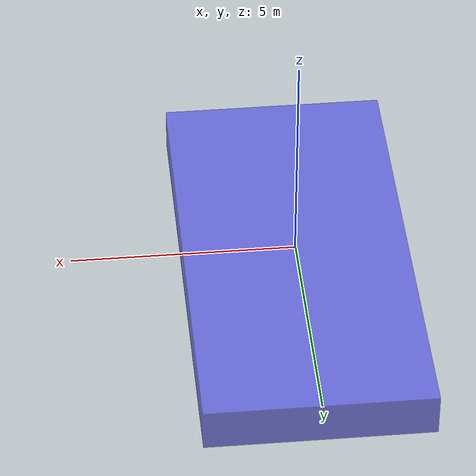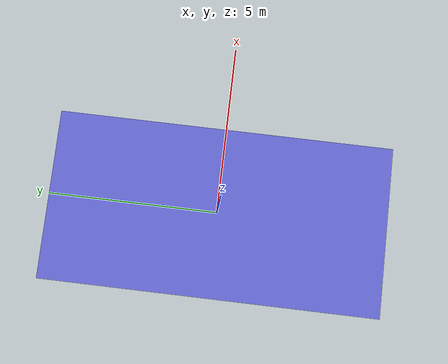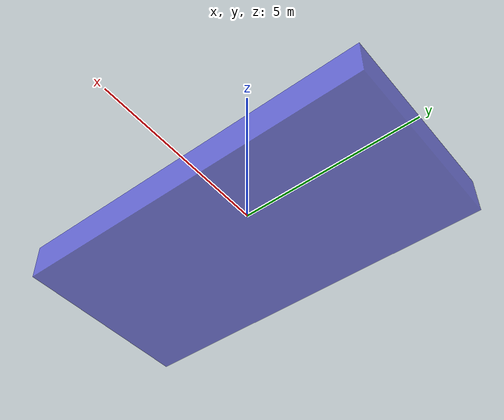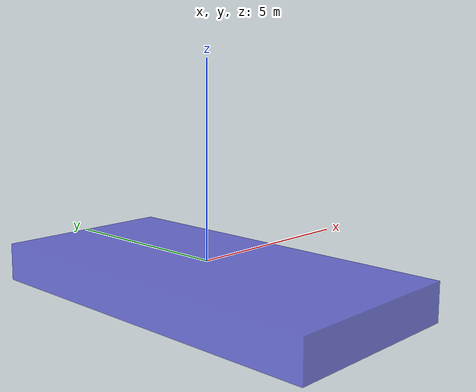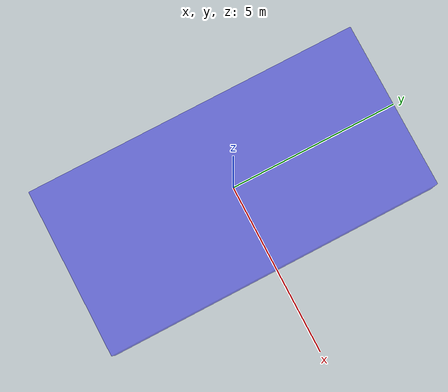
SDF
<?xml version="1.0"?>
<sdf version="1.7">
  <model name="ground">
    <link name="ground_link">
      <visual name="visual">
        <pose>0 0 -0.50 0 0 0</pose>
        <geometry>
          <box>
            <size>5 10 1.0</size>
          </box>
        </geometry>
        <material>
         <diffuse>0.3 0.3 0.9 0.7</diffuse>
        </material>
      </visual>
      <collision name="collision">
        <pose>0 0 -0.50  0 0 0</pose>
        <geometry>
          <box>
            <size>5 10 1.0</size>
          </box>
        </geometry>
        <surface>
          <friction>
          <ode>
            <mu>0.5</mu>
            <mu2>0.5</mu2>
          </ode>
          </friction>
        </surface>
      </collision>
    </link>
    <frame name="ground_center">
      <pose relative_to="ground_link">0 0 0.0 0 0 0</pose>
    </frame>
  </model>
</sdf>
